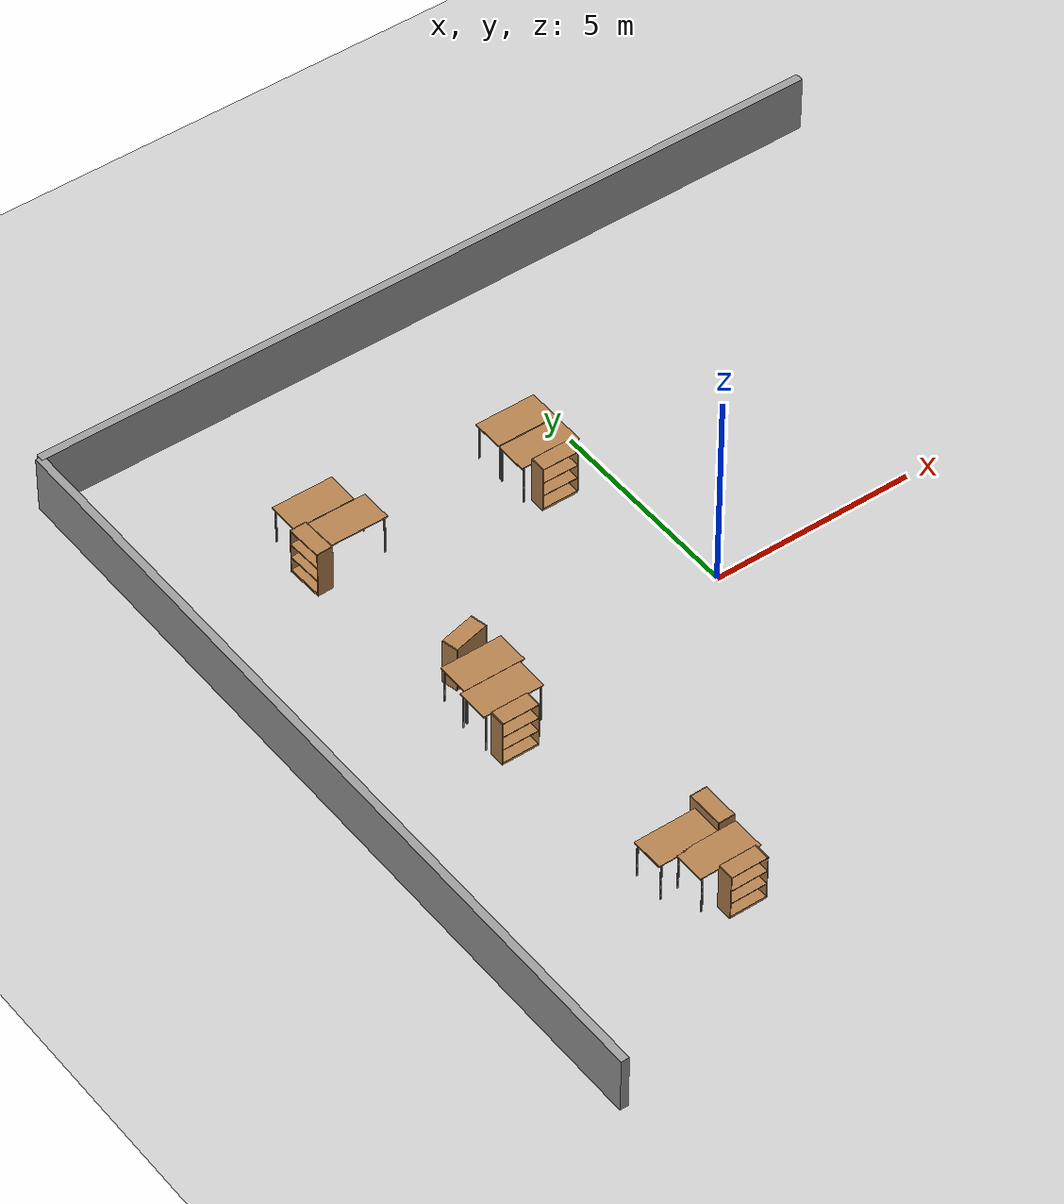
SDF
<sdf version="1.6">
 <world name="default">
  <model name="ground_plane">
   <static>1</static>
   <link name="link">
    <collision name="collision">
     <geometry><plane><normal>0 0 1</normal><size>100 100</size></plane></geometry>
     <surface><friction><ode><mu>100</mu><mu2>50</mu2></ode></friction></surface>
    </collision>
    <visual name="visual">
     <cast_shadows>0</cast_shadows>
     <geometry><plane><normal>0 0 1</normal><size>100 100</size></plane></geometry>
     <material>
      <script><uri>file://media/materials/scripts/gazebo.material</uri><name>Gazebo/Grey</name></script>
     </material>
    </visual>
   </link>
  </model>
  <model name="grey_wall_1">
   <link name="link">
    <inertial>
     <mass>1</mass>
     <inertia><ixx>1</ixx><ixy>0</ixy><ixz>0</ixz><iyy>1</iyy><iyz>0</iyz><izz>1</izz></inertia>
    </inertial>
    <visual name="visual">
     <cast_shadows>0</cast_shadows>
     <geometry><box><size>20 0.2 2.8</size></box></geometry>
     <material>
      <script>
       <uri>model://grey_wall/materials/scripts</uri>
       <uri>model://grey_wall/materials/textures</uri>
       <name>vrc/grey_wall</name>
      </script>
      <ambient>1 1 1 1</ambient>
      <diffuse>1 1 1 1</diffuse>
      <specular>0 0 0 1</specular>
      <emissive>0 0 0 1</emissive>
      <shader type="vertex"><normal_map>__default__</normal_map></shader>
     </material>
    </visual>
    <collision name="collision">
     <geometry><box><size>20 0.2 2.8</size></box></geometry>
     <surface>
      <friction>
       <ode><mu>1</mu><mu2>1</mu2><fdir1>0 0 0</fdir1><slip1>0</slip1><slip2>0</slip2></ode>
       <torsional>
        <coefficient>1</coefficient>
        <patch_radius>0</patch_radius>
        <surface_radius>0</surface_radius>
        <use_patch_radius>1</use_patch_radius>
        <ode><slip>0</slip></ode>
       </torsional>
      </friction>
      <bounce><restitution_coefficient>0</restitution_coefficient><threshold>1e+06</threshold></bounce>
      <contact>
       <collide_without_contact>0</collide_without_contact>
       <collide_without_contact_bitmask>1</collide_without_contact_bitmask>
       <collide_bitmask>1</collide_bitmask>
       <ode>
        <soft_cfm>0</soft_cfm>
        <soft_erp>0.2</soft_erp>
        <kp>1e+13</kp>
        <kd>1</kd>
        <max_vel>0.01</max_vel>
        <min_depth>0</min_depth>
       </ode>
       <bullet>
        <split_impulse>1</split_impulse>
        <split_impulse_penetration_threshold>-0.01</split_impulse_penetration_threshold>
        <soft_cfm>0</soft_cfm>
        <soft_erp>0.2</soft_erp>
        <kp>1e+13</kp>
        <kd>1</kd>
       </bullet>
      </contact>
     </surface>
    </collision>
   </link>
   <static>1</static>
   <pose>0 10 0 0 -0 0</pose>
  </model>
  <model name="grey_wall_3">
   <link name="link">
    <inertial>
     <mass>1</mass>
     <inertia><ixx>1</ixx><ixy>0</ixy><ixz>0</ixz><iyy>1</iyy><iyz>0</iyz><izz>1</izz></inertia>
    </inertial>
    <visual name="visual">
     <cast_shadows>0</cast_shadows>
     <geometry><box><size>20 0.2 2.8</size></box></geometry>
     <material>
      <script>
       <uri>model://grey_wall/materials/scripts</uri>
       <uri>model://grey_wall/materials/textures</uri>
       <name>vrc/grey_wall</name>
      </script>
      <ambient>1 1 1 1</ambient>
      <diffuse>1 1 1 1</diffuse>
      <specular>0 0 0 1</specular>
      <emissive>0 0 0 1</emissive>
      <shader type="vertex"><normal_map>__default__</normal_map></shader>
     </material>
    </visual>
    <collision name="collision">
     <geometry><box><size>20 0.2 2.8</size></box></geometry>
     <surface>
      <friction>
       <ode><mu>1</mu><mu2>1</mu2><fdir1>0 0 0</fdir1><slip1>0</slip1><slip2>0</slip2></ode>
       <torsional>
        <coefficient>1</coefficient>
        <patch_radius>0</patch_radius>
        <surface_radius>0</surface_radius>
        <use_patch_radius>1</use_patch_radius>
        <ode><slip>0</slip></ode>
       </torsional>
      </friction>
      <bounce><restitution_coefficient>0</restitution_coefficient><threshold>1e+06</threshold></bounce>
      <contact>
       <collide_without_contact>0</collide_without_contact>
       <collide_without_contact_bitmask>1</collide_without_contact_bitmask>
       <collide_bitmask>1</collide_bitmask>
       <ode>
        <soft_cfm>0</soft_cfm>
        <soft_erp>0.2</soft_erp>
        <kp>1e+13</kp>
        <kd>1</kd>
        <max_vel>0.01</max_vel>
        <min_depth>0</min_depth>
       </ode>
       <bullet>
        <split_impulse>1</split_impulse>
        <split_impulse_penetration_threshold>-0.01</split_impulse_penetration_threshold>
        <soft_cfm>0</soft_cfm>
        <soft_erp>0.2</soft_erp>
        <kp>1e+13</kp>
        <kd>1</kd>
       </bullet>
      </contact>
     </surface>
    </collision>
   </link>
   <static>1</static>
   <pose>-10 0 0 0 0 -1.5708</pose>
  </model>
  <model name="table_0">
   <static>1</static>
   <link name="link">
    <collision name="surface">
     <pose>0 0 1 0 -0 0</pose>
     <geometry><box><size>1.5 0.8 0.03</size></box></geometry>
     <surface><friction><ode><mu>0.6</mu><mu2>0.6</mu2></ode></friction></surface>
    </collision>
    <visual name="visual1">
     <pose>0 0 1 0 -0 0</pose>
     <geometry><box><size>1.5 0.8 0.03</size></box></geometry>
     <material>
      <script><uri>file://media/materials/scripts/gazebo.material</uri><name>Gazebo/Wood</name></script>
     </material>
    </visual>
    <collision name="front_left_leg">
     <pose>0.68 0.38 0.5 0 -0 0</pose>
     <geometry><cylinder><radius>0.02</radius><length>1</length></cylinder></geometry>
    </collision>
    <visual name="front_left_leg">
     <pose>0.68 0.38 0.5 0 -0 0</pose>
     <geometry><cylinder><radius>0.02</radius><length>1</length></cylinder></geometry>
     <material>
      <script><uri>file://media/materials/scripts/gazebo.material</uri><name>Gazebo/Grey</name></script>
     </material>
    </visual>
    <collision name="front_right_leg">
     <pose>0.68 -0.38 0.5 0 -0 0</pose>
     <geometry><cylinder><radius>0.02</radius><length>1</length></cylinder></geometry>
    </collision>
    <visual name="front_right_leg">
     <pose>0.68 -0.38 0.5 0 -0 0</pose>
     <geometry><cylinder><radius>0.02</radius><length>1</length></cylinder></geometry>
     <material>
      <script><uri>file://media/materials/scripts/gazebo.material</uri><name>Gazebo/Grey</name></script>
     </material>
    </visual>
    <collision name="back_right_leg">
     <pose>-0.68 -0.38 0.5 0 -0 0</pose>
     <geometry><cylinder><radius>0.02</radius><length>1</length></cylinder></geometry>
    </collision>
    <visual name="back_right_leg">
     <pose>-0.68 -0.38 0.5 0 -0 0</pose>
     <geometry><cylinder><radius>0.02</radius><length>1</length></cylinder></geometry>
     <material>
      <script><uri>file://media/materials/scripts/gazebo.material</uri><name>Gazebo/Grey</name></script>
     </material>
    </visual>
    <collision name="back_left_leg">
     <pose>-0.68 0.38 0.5 0 -0 0</pose>
     <geometry><cylinder><radius>0.02</radius><length>1</length></cylinder></geometry>
    </collision>
    <visual name="back_left_leg">
     <pose>-0.68 0.38 0.5 0 -0 0</pose>
     <geometry><cylinder><radius>0.02</radius><length>1</length></cylinder></geometry>
     <material>
      <script><uri>file://media/materials/scripts/gazebo.material</uri><name>Gazebo/Grey</name></script>
     </material>
    </visual>
   </link>
   <pose>-1.18424 5.36108 0 0 -0 0</pose>
  </model>
  <model name="table_1">
   <static>1</static>
   <link name="link">
    <collision name="surface">
     <pose>0 0 1 0 -0 0</pose>
     <geometry><box><size>1.5 0.8 0.03</size></box></geometry>
     <surface><friction><ode><mu>0.6</mu><mu2>0.6</mu2></ode></friction></surface>
    </collision>
    <visual name="visual1">
     <pose>0 0 1 0 -0 0</pose>
     <geometry><box><size>1.5 0.8 0.03</size></box></geometry>
     <material>
      <script><uri>file://media/materials/scripts/gazebo.material</uri><name>Gazebo/Wood</name></script>
     </material>
    </visual>
    <collision name="front_left_leg">
     <pose>0.68 0.38 0.5 0 -0 0</pose>
     <geometry><cylinder><radius>0.02</radius><length>1</length></cylinder></geometry>
    </collision>
    <visual name="front_left_leg">
     <pose>0.68 0.38 0.5 0 -0 0</pose>
     <geometry><cylinder><radius>0.02</radius><length>1</length></cylinder></geometry>
     <material>
      <script><uri>file://media/materials/scripts/gazebo.material</uri><name>Gazebo/Grey</name></script>
     </material>
    </visual>
    <collision name="front_right_leg">
     <pose>0.68 -0.38 0.5 0 -0 0</pose>
     <geometry><cylinder><radius>0.02</radius><length>1</length></cylinder></geometry>
    </collision>
    <visual name="front_right_leg">
     <pose>0.68 -0.38 0.5 0 -0 0</pose>
     <geometry><cylinder><radius>0.02</radius><length>1</length></cylinder></geometry>
     <material>
      <script><uri>file://media/materials/scripts/gazebo.material</uri><name>Gazebo/Grey</name></script>
     </material>
    </visual>
    <collision name="back_right_leg">
     <pose>-0.68 -0.38 0.5 0 -0 0</pose>
     <geometry><cylinder><radius>0.02</radius><length>1</length></cylinder></geometry>
    </collision>
    <visual name="back_right_leg">
     <pose>-0.68 -0.38 0.5 0 -0 0</pose>
     <geometry><cylinder><radius>0.02</radius><length>1</length></cylinder></geometry>
     <material>
      <script><uri>file://media/materials/scripts/gazebo.material</uri><name>Gazebo/Grey</name></script>
     </material>
    </visual>
    <collision name="back_left_leg">
     <pose>-0.68 0.38 0.5 0 -0 0</pose>
     <geometry><cylinder><radius>0.02</radius><length>1</length></cylinder></geometry>
    </collision>
    <visual name="back_left_leg">
     <pose>-0.68 0.38 0.5 0 -0 0</pose>
     <geometry><cylinder><radius>0.02</radius><length>1</length></cylinder></geometry>
     <material>
      <script><uri>file://media/materials/scripts/gazebo.material</uri><name>Gazebo/Grey</name></script>
     </material>
    </visual>
   </link>
   <pose>-1.19395 4.53347 0 0 -0 0</pose>
  </model>
  <model name="table_1_clone">
   <static>1</static>
   <link name="link">
    <collision name="surface">
     <pose>0 0 1 0 -0 0</pose>
     <geometry><box><size>1.5 0.8 0.03</size></box></geometry>
     <surface><friction><ode><mu>0.6</mu><mu2>0.6</mu2></ode></friction></surface>
    </collision>
    <visual name="visual1">
     <pose>0 0 1 0 -0 0</pose>
     <geometry><box><size>1.5 0.8 0.03</size></box></geometry>
     <material>
      <script><uri>file://media/materials/scripts/gazebo.material</uri><name>Gazebo/Wood</name></script>
     </material>
    </visual>
    <collision name="front_left_leg">
     <pose>0.68 0.38 0.5 0 -0 0</pose>
     <geometry><cylinder><radius>0.02</radius><length>1</length></cylinder></geometry>
    </collision>
    <visual name="front_left_leg">
     <pose>0.68 0.38 0.5 0 -0 0</pose>
     <geometry><cylinder><radius>0.02</radius><length>1</length></cylinder></geometry>
     <material>
      <script><uri>file://media/materials/scripts/gazebo.material</uri><name>Gazebo/Grey</name></script>
     </material>
    </visual>
    <collision name="front_right_leg">
     <pose>0.68 -0.38 0.5 0 -0 0</pose>
     <geometry><cylinder><radius>0.02</radius><length>1</length></cylinder></geometry>
    </collision>
    <visual name="front_right_leg">
     <pose>0.68 -0.38 0.5 0 -0 0</pose>
     <geometry><cylinder><radius>0.02</radius><length>1</length></cylinder></geometry>
     <material>
      <script><uri>file://media/materials/scripts/gazebo.material</uri><name>Gazebo/Grey</name></script>
     </material>
    </visual>
    <collision name="back_right_leg">
     <pose>-0.68 -0.38 0.5 0 -0 0</pose>
     <geometry><cylinder><radius>0.02</radius><length>1</length></cylinder></geometry>
    </collision>
    <visual name="back_right_leg">
     <pose>-0.68 -0.38 0.5 0 -0 0</pose>
     <geometry><cylinder><radius>0.02</radius><length>1</length></cylinder></geometry>
     <material>
      <script><uri>file://media/materials/scripts/gazebo.material</uri><name>Gazebo/Grey</name></script>
     </material>
    </visual>
    <collision name="back_left_leg">
     <pose>-0.68 0.38 0.5 0 -0 0</pose>
     <geometry><cylinder><radius>0.02</radius><length>1</length></cylinder></geometry>
    </collision>
    <visual name="back_left_leg">
     <pose>-0.68 0.38 0.5 0 -0 0</pose>
     <geometry><cylinder><radius>0.02</radius><length>1</length></cylinder></geometry>
     <material>
      <script><uri>file://media/materials/scripts/gazebo.material</uri><name>Gazebo/Grey</name></script>
     </material>
    </visual>
   </link>
   <pose>-5.73014 5.0657 0 0 -0 0</pose>
  </model>
  <model name="table_1_clone_0">
   <static>1</static>
   <link name="link">
    <collision name="surface">
     <pose>0 0 1 0 -0 0</pose>
     <geometry><box><size>1.5 0.8 0.03</size></box></geometry>
     <surface><friction><ode><mu>0.6</mu><mu2>0.6</mu2></ode></friction></surface>
    </collision>
    <visual name="visual1">
     <pose>0 0 1 0 -0 0</pose>
     <geometry><box><size>1.5 0.8 0.03</size></box></geometry>
     <material>
      <script><uri>file://media/materials/scripts/gazebo.material</uri><name>Gazebo/Wood</name></script>
     </material>
    </visual>
    <collision name="front_left_leg">
     <pose>0.68 0.38 0.5 0 -0 0</pose>
     <geometry><cylinder><radius>0.02</radius><length>1</length></cylinder></geometry>
    </collision>
    <visual name="front_left_leg">
     <pose>0.68 0.38 0.5 0 -0 0</pose>
     <geometry><cylinder><radius>0.02</radius><length>1</length></cylinder></geometry>
     <material>
      <script><uri>file://media/materials/scripts/gazebo.material</uri><name>Gazebo/Grey</name></script>
     </material>
    </visual>
    <collision name="front_right_leg">
     <pose>0.68 -0.38 0.5 0 -0 0</pose>
     <geometry><cylinder><radius>0.02</radius><length>1</length></cylinder></geometry>
    </collision>
    <visual name="front_right_leg">
     <pose>0.68 -0.38 0.5 0 -0 0</pose>
     <geometry><cylinder><radius>0.02</radius><length>1</length></cylinder></geometry>
     <material>
      <script><uri>file://media/materials/scripts/gazebo.material</uri><name>Gazebo/Grey</name></script>
     </material>
    </visual>
    <collision name="back_right_leg">
     <pose>-0.68 -0.38 0.5 0 -0 0</pose>
     <geometry><cylinder><radius>0.02</radius><length>1</length></cylinder></geometry>
    </collision>
    <visual name="back_right_leg">
     <pose>-0.68 -0.38 0.5 0 -0 0</pose>
     <geometry><cylinder><radius>0.02</radius><length>1</length></cylinder></geometry>
     <material>
      <script><uri>file://media/materials/scripts/gazebo.material</uri><name>Gazebo/Grey</name></script>
     </material>
    </visual>
    <collision name="back_left_leg">
     <pose>-0.68 0.38 0.5 0 -0 0</pose>
     <geometry><cylinder><radius>0.02</radius><length>1</length></cylinder></geometry>
    </collision>
    <visual name="back_left_leg">
     <pose>-0.68 0.38 0.5 0 -0 0</pose>
     <geometry><cylinder><radius>0.02</radius><length>1</length></cylinder></geometry>
     <material>
      <script><uri>file://media/materials/scripts/gazebo.material</uri><name>Gazebo/Grey</name></script>
     </material>
    </visual>
   </link>
   <pose>-6.00013 5.8828 0 0 -0 0</pose>
  </model>
  <model name="table_1_clone_clone">
   <static>1</static>
   <link name="link">
    <collision name="surface">
     <pose>0 0 1 0 -0 0</pose>
     <geometry><box><size>1.5 0.8 0.03</size></box></geometry>
     <surface><friction><ode><mu>0.6</mu><mu2>0.6</mu2></ode></friction></surface>
    </collision>
    <visual name="visual1">
     <pose>0 0 1 0 -0 0</pose>
     <geometry><box><size>1.5 0.8 0.03</size></box></geometry>
     <material>
      <script><uri>file://media/materials/scripts/gazebo.material</uri><name>Gazebo/Wood</name></script>
     </material>
    </visual>
    <collision name="front_left_leg">
     <pose>0.68 0.38 0.5 0 -0 0</pose>
     <geometry><cylinder><radius>0.02</radius><length>1</length></cylinder></geometry>
    </collision>
    <visual name="front_left_leg">
     <pose>0.68 0.38 0.5 0 -0 0</pose>
     <geometry><cylinder><radius>0.02</radius><length>1</length></cylinder></geometry>
     <material>
      <script><uri>file://media/materials/scripts/gazebo.material</uri><name>Gazebo/Grey</name></script>
     </material>
    </visual>
    <collision name="front_right_leg">
     <pose>0.68 -0.38 0.5 0 -0 0</pose>
     <geometry><cylinder><radius>0.02</radius><length>1</length></cylinder></geometry>
    </collision>
    <visual name="front_right_leg">
     <pose>0.68 -0.38 0.5 0 -0 0</pose>
     <geometry><cylinder><radius>0.02</radius><length>1</length></cylinder></geometry>
     <material>
      <script><uri>file://media/materials/scripts/gazebo.material</uri><name>Gazebo/Grey</name></script>
     </material>
    </visual>
    <collision name="back_right_leg">
     <pose>-0.68 -0.38 0.5 0 -0 0</pose>
     <geometry><cylinder><radius>0.02</radius><length>1</length></cylinder></geometry>
    </collision>
    <visual name="back_right_leg">
     <pose>-0.68 -0.38 0.5 0 -0 0</pose>
     <geometry><cylinder><radius>0.02</radius><length>1</length></cylinder></geometry>
     <material>
      <script><uri>file://media/materials/scripts/gazebo.material</uri><name>Gazebo/Grey</name></script>
     </material>
    </visual>
    <collision name="back_left_leg">
     <pose>-0.68 0.38 0.5 0 -0 0</pose>
     <geometry><cylinder><radius>0.02</radius><length>1</length></cylinder></geometry>
    </collision>
    <visual name="back_left_leg">
     <pose>-0.68 0.38 0.5 0 -0 0</pose>
     <geometry><cylinder><radius>0.02</radius><length>1</length></cylinder></geometry>
     <material>
      <script><uri>file://media/materials/scripts/gazebo.material</uri><name>Gazebo/Grey</name></script>
     </material>
    </visual>
   </link>
   <pose>-5.86502 0.165513 0 0 -0 0</pose>
  </model>
  <model name="table_1_clone_clone_0">
   <static>1</static>
   <link name="link">
    <collision name="surface">
     <pose>0 0 1 0 -0 0</pose>
     <geometry><box><size>1.5 0.8 0.03</size></box></geometry>
     <surface><friction><ode><mu>0.6</mu><mu2>0.6</mu2></ode></friction></surface>
    </collision>
    <visual name="visual1">
     <pose>0 0 1 0 -0 0</pose>
     <geometry><box><size>1.5 0.8 0.03</size></box></geometry>
     <material>
      <script><uri>file://media/materials/scripts/gazebo.material</uri><name>Gazebo/Wood</name></script>
     </material>
    </visual>
    <collision name="front_left_leg">
     <pose>0.68 0.38 0.5 0 -0 0</pose>
     <geometry><cylinder><radius>0.02</radius><length>1</length></cylinder></geometry>
    </collision>
    <visual name="front_left_leg">
     <pose>0.68 0.38 0.5 0 -0 0</pose>
     <geometry><cylinder><radius>0.02</radius><length>1</length></cylinder></geometry>
     <material>
      <script><uri>file://media/materials/scripts/gazebo.material</uri><name>Gazebo/Grey</name></script>
     </material>
    </visual>
    <collision name="front_right_leg">
     <pose>0.68 -0.38 0.5 0 -0 0</pose>
     <geometry><cylinder><radius>0.02</radius><length>1</length></cylinder></geometry>
    </collision>
    <visual name="front_right_leg">
     <pose>0.68 -0.38 0.5 0 -0 0</pose>
     <geometry><cylinder><radius>0.02</radius><length>1</length></cylinder></geometry>
     <material>
      <script><uri>file://media/materials/scripts/gazebo.material</uri><name>Gazebo/Grey</name></script>
     </material>
    </visual>
    <collision name="back_right_leg">
     <pose>-0.68 -0.38 0.5 0 -0 0</pose>
     <geometry><cylinder><radius>0.02</radius><length>1</length></cylinder></geometry>
    </collision>
    <visual name="back_right_leg">
     <pose>-0.68 -0.38 0.5 0 -0 0</pose>
     <geometry><cylinder><radius>0.02</radius><length>1</length></cylinder></geometry>
     <material>
      <script><uri>file://media/materials/scripts/gazebo.material</uri><name>Gazebo/Grey</name></script>
     </material>
    </visual>
    <collision name="back_left_leg">
     <pose>-0.68 0.38 0.5 0 -0 0</pose>
     <geometry><cylinder><radius>0.02</radius><length>1</length></cylinder></geometry>
    </collision>
    <visual name="back_left_leg">
     <pose>-0.68 0.38 0.5 0 -0 0</pose>
     <geometry><cylinder><radius>0.02</radius><length>1</length></cylinder></geometry>
     <material>
      <script><uri>file://media/materials/scripts/gazebo.material</uri><name>Gazebo/Grey</name></script>
     </material>
    </visual>
   </link>
   <pose>-5.97958 -0.64179 0 0 -0 0</pose>
  </model>
  <model name="table_1_clone_clone_1">
   <static>1</static>
   <link name="link">
    <collision name="surface">
     <pose>0 0 1 0 -0 0</pose>
     <geometry><box><size>1.5 0.8 0.03</size></box></geometry>
     <surface><friction><ode><mu>0.6</mu><mu2>0.6</mu2></ode></friction></surface>
    </collision>
    <visual name="visual1">
     <pose>0 0 1 0 -0 0</pose>
     <geometry><box><size>1.5 0.8 0.03</size></box></geometry>
     <material>
      <script><uri>file://media/materials/scripts/gazebo.material</uri><name>Gazebo/Wood</name></script>
     </material>
    </visual>
    <collision name="front_left_leg">
     <pose>0.68 0.38 0.5 0 -0 0</pose>
     <geometry><cylinder><radius>0.02</radius><length>1</length></cylinder></geometry>
    </collision>
    <visual name="front_left_leg">
     <pose>0.68 0.38 0.5 0 -0 0</pose>
     <geometry><cylinder><radius>0.02</radius><length>1</length></cylinder></geometry>
     <material>
      <script><uri>file://media/materials/scripts/gazebo.material</uri><name>Gazebo/Grey</name></script>
     </material>
    </visual>
    <collision name="front_right_leg">
     <pose>0.68 -0.38 0.5 0 -0 0</pose>
     <geometry><cylinder><radius>0.02</radius><length>1</length></cylinder></geometry>
    </collision>
    <visual name="front_right_leg">
     <pose>0.68 -0.38 0.5 0 -0 0</pose>
     <geometry><cylinder><radius>0.02</radius><length>1</length></cylinder></geometry>
     <material>
      <script><uri>file://media/materials/scripts/gazebo.material</uri><name>Gazebo/Grey</name></script>
     </material>
    </visual>
    <collision name="back_right_leg">
     <pose>-0.68 -0.38 0.5 0 -0 0</pose>
     <geometry><cylinder><radius>0.02</radius><length>1</length></cylinder></geometry>
    </collision>
    <visual name="back_right_leg">
     <pose>-0.68 -0.38 0.5 0 -0 0</pose>
     <geometry><cylinder><radius>0.02</radius><length>1</length></cylinder></geometry>
     <material>
      <script><uri>file://media/materials/scripts/gazebo.material</uri><name>Gazebo/Grey</name></script>
     </material>
    </visual>
    <collision name="back_left_leg">
     <pose>-0.68 0.38 0.5 0 -0 0</pose>
     <geometry><cylinder><radius>0.02</radius><length>1</length></cylinder></geometry>
    </collision>
    <visual name="back_left_leg">
     <pose>-0.68 0.38 0.5 0 -0 0</pose>
     <geometry><cylinder><radius>0.02</radius><length>1</length></cylinder></geometry>
     <material>
      <script><uri>file://media/materials/scripts/gazebo.material</uri><name>Gazebo/Grey</name></script>
     </material>
    </visual>
   </link>
   <pose>-5.57466 -5.86249 0 0 -0 0</pose>
  </model>
  <model name="table_1_clone_clone_2">
   <static>1</static>
   <link name="link">
    <collision name="surface">
     <pose>0 0 1 0 -0 0</pose>
     <geometry><box><size>1.5 0.8 0.03</size></box></geometry>
     <surface><friction><ode><mu>0.6</mu><mu2>0.6</mu2></ode></friction></surface>
    </collision>
    <visual name="visual1">
     <pose>0 0 1 0 -0 0</pose>
     <geometry><box><size>1.5 0.8 0.03</size></box></geometry>
     <material>
      <script><uri>file://media/materials/scripts/gazebo.material</uri><name>Gazebo/Wood</name></script>
     </material>
    </visual>
    <collision name="front_left_leg">
     <pose>0.68 0.38 0.5 0 -0 0</pose>
     <geometry><cylinder><radius>0.02</radius><length>1</length></cylinder></geometry>
    </collision>
    <visual name="front_left_leg">
     <pose>0.68 0.38 0.5 0 -0 0</pose>
     <geometry><cylinder><radius>0.02</radius><length>1</length></cylinder></geometry>
     <material>
      <script><uri>file://media/materials/scripts/gazebo.material</uri><name>Gazebo/Grey</name></script>
     </material>
    </visual>
    <collision name="front_right_leg">
     <pose>0.68 -0.38 0.5 0 -0 0</pose>
     <geometry><cylinder><radius>0.02</radius><length>1</length></cylinder></geometry>
    </collision>
    <visual name="front_right_leg">
     <pose>0.68 -0.38 0.5 0 -0 0</pose>
     <geometry><cylinder><radius>0.02</radius><length>1</length></cylinder></geometry>
     <material>
      <script><uri>file://media/materials/scripts/gazebo.material</uri><name>Gazebo/Grey</name></script>
     </material>
    </visual>
    <collision name="back_right_leg">
     <pose>-0.68 -0.38 0.5 0 -0 0</pose>
     <geometry><cylinder><radius>0.02</radius><length>1</length></cylinder></geometry>
    </collision>
    <visual name="back_right_leg">
     <pose>-0.68 -0.38 0.5 0 -0 0</pose>
     <geometry><cylinder><radius>0.02</radius><length>1</length></cylinder></geometry>
     <material>
      <script><uri>file://media/materials/scripts/gazebo.material</uri><name>Gazebo/Grey</name></script>
     </material>
    </visual>
    <collision name="back_left_leg">
     <pose>-0.68 0.38 0.5 0 -0 0</pose>
     <geometry><cylinder><radius>0.02</radius><length>1</length></cylinder></geometry>
    </collision>
    <visual name="back_left_leg">
     <pose>-0.68 0.38 0.5 0 -0 0</pose>
     <geometry><cylinder><radius>0.02</radius><length>1</length></cylinder></geometry>
     <material>
      <script><uri>file://media/materials/scripts/gazebo.material</uri><name>Gazebo/Grey</name></script>
     </material>
    </visual>
   </link>
   <pose>-5.12777 -6.5965 0 0 -0 0</pose>
  </model>
  <model name="bookshelf_3">
   <static>1</static>
   <link name="link">
    <inertial><mass>1</mass></inertial>
    <collision name="back">
     <pose>0 0.005 0.6 0 -0 0</pose>
     <geometry><box><size>0.9 0.01 1.2</size></box></geometry>
    </collision>
    <visual name="visual1">
     <pose>0 0.005 0.6 0 -0 0</pose>
     <geometry><box><size>0.9 0.01 1.2</size></box></geometry>
     <material>
      <script><uri>file://media/materials/scripts/gazebo.material</uri><name>Gazebo/Wood</name></script>
     </material>
    </visual>
    <collision name="left_side">
     <pose>0.45 -0.195 0.6 0 -0 0</pose>
     <geometry><box><size>0.02 0.4 1.2</size></box></geometry>
    </collision>
    <visual name="visual2">
     <pose>0.45 -0.195 0.6 0 -0 0</pose>
     <geometry><box><size>0.02 0.4 1.2</size></box></geometry>
     <material>
      <script><uri>file://media/materials/scripts/gazebo.material</uri><name>Gazebo/Wood</name></script>
     </material>
    </visual>
    <collision name="right_side">
     <pose>-0.45 -0.195 0.6 0 -0 0</pose>
     <geometry><box><size>0.02 0.4 1.2</size></box></geometry>
    </collision>
    <visual name="visual3">
     <pose>-0.45 -0.195 0.6 0 -0 0</pose>
     <geometry><box><size>0.02 0.4 1.2</size></box></geometry>
     <material>
      <script><uri>file://media/materials/scripts/gazebo.material</uri><name>Gazebo/Wood</name></script>
     </material>
    </visual>
    <collision name="bottom">
     <pose>0 -0.195 0.03 0 -0 0</pose>
     <geometry><box><size>0.88 0.4 0.06</size></box></geometry>
    </collision>
    <visual name="visual4">
     <pose>0 -0.195 0.03 0 -0 0</pose>
     <geometry><box><size>0.88 0.4 0.06</size></box></geometry>
     <material>
      <script><uri>file://media/materials/scripts/gazebo.material</uri><name>Gazebo/Wood</name></script>
     </material>
    </visual>
    <collision name="top">
     <pose>0 -0.195 1.19 0 -0 0</pose>
     <geometry><box><size>0.88 0.4 0.02</size></box></geometry>
    </collision>
    <visual name="visual5">
     <pose>0 -0.195 1.19 0 -0 0</pose>
     <geometry><box><size>0.88 0.4 0.02</size></box></geometry>
     <material>
      <script><uri>file://media/materials/scripts/gazebo.material</uri><name>Gazebo/Wood</name></script>
     </material>
    </visual>
    <collision name="low_shelf">
     <pose>0 -0.195 0.43 0 -0 0</pose>
     <geometry><box><size>0.88 0.4 0.02</size></box></geometry>
    </collision>
    <visual name="visual6">
     <pose>0 -0.195 0.43 0 -0 0</pose>
     <geometry><box><size>0.88 0.4 0.02</size></box></geometry>
     <material>
      <script><uri>file://media/materials/scripts/gazebo.material</uri><name>Gazebo/Wood</name></script>
     </material>
    </visual>
    <collision name="high_shelf">
     <pose>0 -0.195 0.8 0 -0 0</pose>
     <geometry><box><size>0.88 0.4 0.02</size></box></geometry>
    </collision>
    <visual name="visual7">
     <pose>0 -0.195 0.8 0 -0 0</pose>
     <geometry><box><size>0.88 0.4 0.02</size></box></geometry>
     <material>
      <script><uri>file://media/materials/scripts/gazebo.material</uri><name>Gazebo/Wood</name></script>
     </material>
    </visual>
   </link>
   <pose>-1.26306 4.09593 0 0 -0 0</pose>
  </model>
  <model name="bookshelf_4">
   <static>1</static>
   <link name="link">
    <inertial><mass>1</mass></inertial>
    <collision name="back">
     <pose>0 0.005 0.6 0 -0 0</pose>
     <geometry><box><size>0.9 0.01 1.2</size></box></geometry>
    </collision>
    <visual name="visual1">
     <pose>0 0.005 0.6 0 -0 0</pose>
     <geometry><box><size>0.9 0.01 1.2</size></box></geometry>
     <material>
      <script><uri>file://media/materials/scripts/gazebo.material</uri><name>Gazebo/Wood</name></script>
     </material>
    </visual>
    <collision name="left_side">
     <pose>0.45 -0.195 0.6 0 -0 0</pose>
     <geometry><box><size>0.02 0.4 1.2</size></box></geometry>
    </collision>
    <visual name="visual2">
     <pose>0.45 -0.195 0.6 0 -0 0</pose>
     <geometry><box><size>0.02 0.4 1.2</size></box></geometry>
     <material>
      <script><uri>file://media/materials/scripts/gazebo.material</uri><name>Gazebo/Wood</name></script>
     </material>
    </visual>
    <collision name="right_side">
     <pose>-0.45 -0.195 0.6 0 -0 0</pose>
     <geometry><box><size>0.02 0.4 1.2</size></box></geometry>
    </collision>
    <visual name="visual3">
     <pose>-0.45 -0.195 0.6 0 -0 0</pose>
     <geometry><box><size>0.02 0.4 1.2</size></box></geometry>
     <material>
      <script><uri>file://media/materials/scripts/gazebo.material</uri><name>Gazebo/Wood</name></script>
     </material>
    </visual>
    <collision name="bottom">
     <pose>0 -0.195 0.03 0 -0 0</pose>
     <geometry><box><size>0.88 0.4 0.06</size></box></geometry>
    </collision>
    <visual name="visual4">
     <pose>0 -0.195 0.03 0 -0 0</pose>
     <geometry><box><size>0.88 0.4 0.06</size></box></geometry>
     <material>
      <script><uri>file://media/materials/scripts/gazebo.material</uri><name>Gazebo/Wood</name></script>
     </material>
    </visual>
    <collision name="top">
     <pose>0 -0.195 1.19 0 -0 0</pose>
     <geometry><box><size>0.88 0.4 0.02</size></box></geometry>
    </collision>
    <visual name="visual5">
     <pose>0 -0.195 1.19 0 -0 0</pose>
     <geometry><box><size>0.88 0.4 0.02</size></box></geometry>
     <material>
      <script><uri>file://media/materials/scripts/gazebo.material</uri><name>Gazebo/Wood</name></script>
     </material>
    </visual>
    <collision name="low_shelf">
     <pose>0 -0.195 0.43 0 -0 0</pose>
     <geometry><box><size>0.88 0.4 0.02</size></box></geometry>
    </collision>
    <visual name="visual6">
     <pose>0 -0.195 0.43 0 -0 0</pose>
     <geometry><box><size>0.88 0.4 0.02</size></box></geometry>
     <material>
      <script><uri>file://media/materials/scripts/gazebo.material</uri><name>Gazebo/Wood</name></script>
     </material>
    </visual>
    <collision name="high_shelf">
     <pose>0 -0.195 0.8 0 -0 0</pose>
     <geometry><box><size>0.88 0.4 0.02</size></box></geometry>
    </collision>
    <visual name="visual7">
     <pose>0 -0.195 0.8 0 -0 0</pose>
     <geometry><box><size>0.88 0.4 0.02</size></box></geometry>
     <material>
      <script><uri>file://media/materials/scripts/gazebo.material</uri><name>Gazebo/Wood</name></script>
     </material>
    </visual>
   </link>
   <pose>-6.53037 4.93056 0 -0.002978 0.000125 -1.52896</pose>
  </model>
  <model name="bookshelf_7">
   <static>1</static>
   <link name="link">
    <inertial><mass>1</mass></inertial>
    <collision name="back">
     <pose>0 0.005 0.6 0 -0 0</pose>
     <geometry><box><size>0.9 0.01 1.2</size></box></geometry>
    </collision>
    <visual name="visual1">
     <pose>0 0.005 0.6 0 -0 0</pose>
     <geometry><box><size>0.9 0.01 1.2</size></box></geometry>
     <material>
      <script><uri>file://media/materials/scripts/gazebo.material</uri><name>Gazebo/Wood</name></script>
     </material>
    </visual>
    <collision name="left_side">
     <pose>0.45 -0.195 0.6 0 -0 0</pose>
     <geometry><box><size>0.02 0.4 1.2</size></box></geometry>
    </collision>
    <visual name="visual2">
     <pose>0.45 -0.195 0.6 0 -0 0</pose>
     <geometry><box><size>0.02 0.4 1.2</size></box></geometry>
     <material>
      <script><uri>file://media/materials/scripts/gazebo.material</uri><name>Gazebo/Wood</name></script>
     </material>
    </visual>
    <collision name="right_side">
     <pose>-0.45 -0.195 0.6 0 -0 0</pose>
     <geometry><box><size>0.02 0.4 1.2</size></box></geometry>
    </collision>
    <visual name="visual3">
     <pose>-0.45 -0.195 0.6 0 -0 0</pose>
     <geometry><box><size>0.02 0.4 1.2</size></box></geometry>
     <material>
      <script><uri>file://media/materials/scripts/gazebo.material</uri><name>Gazebo/Wood</name></script>
     </material>
    </visual>
    <collision name="bottom">
     <pose>0 -0.195 0.03 0 -0 0</pose>
     <geometry><box><size>0.88 0.4 0.06</size></box></geometry>
    </collision>
    <visual name="visual4">
     <pose>0 -0.195 0.03 0 -0 0</pose>
     <geometry><box><size>0.88 0.4 0.06</size></box></geometry>
     <material>
      <script><uri>file://media/materials/scripts/gazebo.material</uri><name>Gazebo/Wood</name></script>
     </material>
    </visual>
    <collision name="top">
     <pose>0 -0.195 1.19 0 -0 0</pose>
     <geometry><box><size>0.88 0.4 0.02</size></box></geometry>
    </collision>
    <visual name="visual5">
     <pose>0 -0.195 1.19 0 -0 0</pose>
     <geometry><box><size>0.88 0.4 0.02</size></box></geometry>
     <material>
      <script><uri>file://media/materials/scripts/gazebo.material</uri><name>Gazebo/Wood</name></script>
     </material>
    </visual>
    <collision name="low_shelf">
     <pose>0 -0.195 0.43 0 -0 0</pose>
     <geometry><box><size>0.88 0.4 0.02</size></box></geometry>
    </collision>
    <visual name="visual6">
     <pose>0 -0.195 0.43 0 -0 0</pose>
     <geometry><box><size>0.88 0.4 0.02</size></box></geometry>
     <material>
      <script><uri>file://media/materials/scripts/gazebo.material</uri><name>Gazebo/Wood</name></script>
     </material>
    </visual>
    <collision name="high_shelf">
     <pose>0 -0.195 0.8 0 -0 0</pose>
     <geometry><box><size>0.88 0.4 0.02</size></box></geometry>
    </collision>
    <visual name="visual7">
     <pose>0 -0.195 0.8 0 -0 0</pose>
     <geometry><box><size>0.88 0.4 0.02</size></box></geometry>
     <material>
      <script><uri>file://media/materials/scripts/gazebo.material</uri><name>Gazebo/Wood</name></script>
     </material>
    </visual>
   </link>
   <pose>-4.79461 -5.73065 0 0 -0 1.57819</pose>
  </model>
  <model name="bookshelf_8">
   <static>1</static>
   <link name="link">
    <inertial><mass>1</mass></inertial>
    <collision name="back">
     <pose>0 0.005 0.6 0 -0 0</pose>
     <geometry><box><size>0.9 0.01 1.2</size></box></geometry>
    </collision>
    <visual name="visual1">
     <pose>0 0.005 0.6 0 -0 0</pose>
     <geometry><box><size>0.9 0.01 1.2</size></box></geometry>
     <material>
      <script><uri>file://media/materials/scripts/gazebo.material</uri><name>Gazebo/Wood</name></script>
     </material>
    </visual>
    <collision name="left_side">
     <pose>0.45 -0.195 0.6 0 -0 0</pose>
     <geometry><box><size>0.02 0.4 1.2</size></box></geometry>
    </collision>
    <visual name="visual2">
     <pose>0.45 -0.195 0.6 0 -0 0</pose>
     <geometry><box><size>0.02 0.4 1.2</size></box></geometry>
     <material>
      <script><uri>file://media/materials/scripts/gazebo.material</uri><name>Gazebo/Wood</name></script>
     </material>
    </visual>
    <collision name="right_side">
     <pose>-0.45 -0.195 0.6 0 -0 0</pose>
     <geometry><box><size>0.02 0.4 1.2</size></box></geometry>
    </collision>
    <visual name="visual3">
     <pose>-0.45 -0.195 0.6 0 -0 0</pose>
     <geometry><box><size>0.02 0.4 1.2</size></box></geometry>
     <material>
      <script><uri>file://media/materials/scripts/gazebo.material</uri><name>Gazebo/Wood</name></script>
     </material>
    </visual>
    <collision name="bottom">
     <pose>0 -0.195 0.03 0 -0 0</pose>
     <geometry><box><size>0.88 0.4 0.06</size></box></geometry>
    </collision>
    <visual name="visual4">
     <pose>0 -0.195 0.03 0 -0 0</pose>
     <geometry><box><size>0.88 0.4 0.06</size></box></geometry>
     <material>
      <script><uri>file://media/materials/scripts/gazebo.material</uri><name>Gazebo/Wood</name></script>
     </material>
    </visual>
    <collision name="top">
     <pose>0 -0.195 1.19 0 -0 0</pose>
     <geometry><box><size>0.88 0.4 0.02</size></box></geometry>
    </collision>
    <visual name="visual5">
     <pose>0 -0.195 1.19 0 -0 0</pose>
     <geometry><box><size>0.88 0.4 0.02</size></box></geometry>
     <material>
      <script><uri>file://media/materials/scripts/gazebo.material</uri><name>Gazebo/Wood</name></script>
     </material>
    </visual>
    <collision name="low_shelf">
     <pose>0 -0.195 0.43 0 -0 0</pose>
     <geometry><box><size>0.88 0.4 0.02</size></box></geometry>
    </collision>
    <visual name="visual6">
     <pose>0 -0.195 0.43 0 -0 0</pose>
     <geometry><box><size>0.88 0.4 0.02</size></box></geometry>
     <material>
      <script><uri>file://media/materials/scripts/gazebo.material</uri><name>Gazebo/Wood</name></script>
     </material>
    </visual>
    <collision name="high_shelf">
     <pose>0 -0.195 0.8 0 -0 0</pose>
     <geometry><box><size>0.88 0.4 0.02</size></box></geometry>
    </collision>
    <visual name="visual7">
     <pose>0 -0.195 0.8 0 -0 0</pose>
     <geometry><box><size>0.88 0.4 0.02</size></box></geometry>
     <material>
      <script><uri>file://media/materials/scripts/gazebo.material</uri><name>Gazebo/Wood</name></script>
     </material>
    </visual>
   </link>
   <pose>-5.01957 -7.06347 0 0 -0 0</pose>
  </model>
  <model name="bookshelf_9">
   <static>1</static>
   <link name="link">
    <inertial><mass>1</mass></inertial>
    <collision name="back">
     <pose>0 0.005 0.6 0 -0 0</pose>
     <geometry><box><size>0.9 0.01 1.2</size></box></geometry>
    </collision>
    <visual name="visual1">
     <pose>0 0.005 0.6 0 -0 0</pose>
     <geometry><box><size>0.9 0.01 1.2</size></box></geometry>
     <material>
      <script><uri>file://media/materials/scripts/gazebo.material</uri><name>Gazebo/Wood</name></script>
     </material>
    </visual>
    <collision name="left_side">
     <pose>0.45 -0.195 0.6 0 -0 0</pose>
     <geometry><box><size>0.02 0.4 1.2</size></box></geometry>
    </collision>
    <visual name="visual2">
     <pose>0.45 -0.195 0.6 0 -0 0</pose>
     <geometry><box><size>0.02 0.4 1.2</size></box></geometry>
     <material>
      <script><uri>file://media/materials/scripts/gazebo.material</uri><name>Gazebo/Wood</name></script>
     </material>
    </visual>
    <collision name="right_side">
     <pose>-0.45 -0.195 0.6 0 -0 0</pose>
     <geometry><box><size>0.02 0.4 1.2</size></box></geometry>
    </collision>
    <visual name="visual3">
     <pose>-0.45 -0.195 0.6 0 -0 0</pose>
     <geometry><box><size>0.02 0.4 1.2</size></box></geometry>
     <material>
      <script><uri>file://media/materials/scripts/gazebo.material</uri><name>Gazebo/Wood</name></script>
     </material>
    </visual>
    <collision name="bottom">
     <pose>0 -0.195 0.03 0 -0 0</pose>
     <geometry><box><size>0.88 0.4 0.06</size></box></geometry>
    </collision>
    <visual name="visual4">
     <pose>0 -0.195 0.03 0 -0 0</pose>
     <geometry><box><size>0.88 0.4 0.06</size></box></geometry>
     <material>
      <script><uri>file://media/materials/scripts/gazebo.material</uri><name>Gazebo/Wood</name></script>
     </material>
    </visual>
    <collision name="top">
     <pose>0 -0.195 1.19 0 -0 0</pose>
     <geometry><box><size>0.88 0.4 0.02</size></box></geometry>
    </collision>
    <visual name="visual5">
     <pose>0 -0.195 1.19 0 -0 0</pose>
     <geometry><box><size>0.88 0.4 0.02</size></box></geometry>
     <material>
      <script><uri>file://media/materials/scripts/gazebo.material</uri><name>Gazebo/Wood</name></script>
     </material>
    </visual>
    <collision name="low_shelf">
     <pose>0 -0.195 0.43 0 -0 0</pose>
     <geometry><box><size>0.88 0.4 0.02</size></box></geometry>
    </collision>
    <visual name="visual6">
     <pose>0 -0.195 0.43 0 -0 0</pose>
     <geometry><box><size>0.88 0.4 0.02</size></box></geometry>
     <material>
      <script><uri>file://media/materials/scripts/gazebo.material</uri><name>Gazebo/Wood</name></script>
     </material>
    </visual>
    <collision name="high_shelf">
     <pose>0 -0.195 0.8 0 -0 0</pose>
     <geometry><box><size>0.88 0.4 0.02</size></box></geometry>
    </collision>
    <visual name="visual7">
     <pose>0 -0.195 0.8 0 -0 0</pose>
     <geometry><box><size>0.88 0.4 0.02</size></box></geometry>
     <material>
      <script><uri>file://media/materials/scripts/gazebo.material</uri><name>Gazebo/Wood</name></script>
     </material>
    </visual>
   </link>
   <pose>-5.73043 0.730064 0 0 0 -2.91202</pose>
  </model>
  <model name="bookshelf_10">
   <static>1</static>
   <link name="link">
    <inertial><mass>1</mass></inertial>
    <collision name="back">
     <pose>0 0.005 0.6 0 -0 0</pose>
     <geometry><box><size>0.9 0.01 1.2</size></box></geometry>
    </collision>
    <visual name="visual1">
     <pose>0 0.005 0.6 0 -0 0</pose>
     <geometry><box><size>0.9 0.01 1.2</size></box></geometry>
     <material>
      <script><uri>file://media/materials/scripts/gazebo.material</uri><name>Gazebo/Wood</name></script>
     </material>
    </visual>
    <collision name="left_side">
     <pose>0.45 -0.195 0.6 0 -0 0</pose>
     <geometry><box><size>0.02 0.4 1.2</size></box></geometry>
    </collision>
    <visual name="visual2">
     <pose>0.45 -0.195 0.6 0 -0 0</pose>
     <geometry><box><size>0.02 0.4 1.2</size></box></geometry>
     <material>
      <script><uri>file://media/materials/scripts/gazebo.material</uri><name>Gazebo/Wood</name></script>
     </material>
    </visual>
    <collision name="right_side">
     <pose>-0.45 -0.195 0.6 0 -0 0</pose>
     <geometry><box><size>0.02 0.4 1.2</size></box></geometry>
    </collision>
    <visual name="visual3">
     <pose>-0.45 -0.195 0.6 0 -0 0</pose>
     <geometry><box><size>0.02 0.4 1.2</size></box></geometry>
     <material>
      <script><uri>file://media/materials/scripts/gazebo.material</uri><name>Gazebo/Wood</name></script>
     </material>
    </visual>
    <collision name="bottom">
     <pose>0 -0.195 0.03 0 -0 0</pose>
     <geometry><box><size>0.88 0.4 0.06</size></box></geometry>
    </collision>
    <visual name="visual4">
     <pose>0 -0.195 0.03 0 -0 0</pose>
     <geometry><box><size>0.88 0.4 0.06</size></box></geometry>
     <material>
      <script><uri>file://media/materials/scripts/gazebo.material</uri><name>Gazebo/Wood</name></script>
     </material>
    </visual>
    <collision name="top">
     <pose>0 -0.195 1.19 0 -0 0</pose>
     <geometry><box><size>0.88 0.4 0.02</size></box></geometry>
    </collision>
    <visual name="visual5">
     <pose>0 -0.195 1.19 0 -0 0</pose>
     <geometry><box><size>0.88 0.4 0.02</size></box></geometry>
     <material>
      <script><uri>file://media/materials/scripts/gazebo.material</uri><name>Gazebo/Wood</name></script>
     </material>
    </visual>
    <collision name="low_shelf">
     <pose>0 -0.195 0.43 0 -0 0</pose>
     <geometry><box><size>0.88 0.4 0.02</size></box></geometry>
    </collision>
    <visual name="visual6">
     <pose>0 -0.195 0.43 0 -0 0</pose>
     <geometry><box><size>0.88 0.4 0.02</size></box></geometry>
     <material>
      <script><uri>file://media/materials/scripts/gazebo.material</uri><name>Gazebo/Wood</name></script>
     </material>
    </visual>
    <collision name="high_shelf">
     <pose>0 -0.195 0.8 0 -0 0</pose>
     <geometry><box><size>0.88 0.4 0.02</size></box></geometry>
    </collision>
    <visual name="visual7">
     <pose>0 -0.195 0.8 0 -0 0</pose>
     <geometry><box><size>0.88 0.4 0.02</size></box></geometry>
     <material>
      <script><uri>file://media/materials/scripts/gazebo.material</uri><name>Gazebo/Wood</name></script>
     </material>
    </visual>
   </link>
   <pose>-6.18256 -1.159 0 0 -0 0</pose>
  </model>
 </world>
</sdf>
